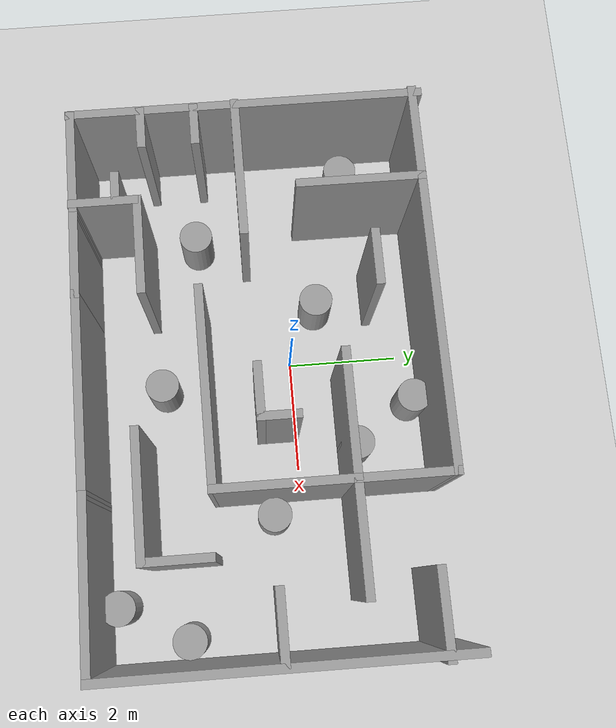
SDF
<sdf version="1.7">
 <world name="default">
  <light name="sun" type="directional">
   <pose>0 0 10 0 -0 0</pose>
   <diffuse>0.8 0.8 0.8 1</diffuse>
   <specular>0.2 0.2 0.2 1</specular>
   <attenuation>
    <range>1000</range>
    <constant>0.9</constant>
    <linear>0.01</linear>
    <quadratic>0.001</quadratic>
   </attenuation>
   <direction>-0.5 0.1 -0.9</direction>
   <spot><inner_angle>0</inner_angle><outer_angle>0</outer_angle><falloff>0</falloff></spot>
  </light>
  <model name="ground_plane">
   <static>1</static>
   <link name="link">
    <collision name="collision">
     <geometry><plane><normal>0 0 1</normal><size>100 100</size></plane></geometry>
     <surface><friction><ode><mu>100</mu><mu2>50</mu2></ode></friction></surface>
    </collision>
    <visual name="visual">
     <cast_shadows>0</cast_shadows>
     <geometry><plane><normal>0 0 1</normal><size>100 100</size></plane></geometry>
     <material>
      <script><uri>file://media/materials/scripts/gazebo.material</uri><name>Gazebo/Grey</name></script>
     </material>
    </visual>
   </link>
  </model>
  <gravity>0 0 -9.8</gravity>
  <magnetic_field>6e-06 2.3e-05 -4.2e-05</magnetic_field>
  <atmosphere type="adiabatic"/>
  <physics type="ode">
   <max_step_size>0.001</max_step_size>
   <real_time_factor>1</real_time_factor>
   <real_time_update_rate>1000</real_time_update_rate>
  </physics>
  <scene><ambient>0.4 0.4 0.4 1</ambient><background>0.7 0.7 0.7 1</background><shadows>1</shadows></scene>
  <audio><device>default</device></audio>
  <spherical_coordinates>
   <surface_model>EARTH_WGS84</surface_model>
   <latitude_deg>0</latitude_deg>
   <longitude_deg>0</longitude_deg>
   <elevation>0</elevation>
   <heading_deg>0</heading_deg>
  </spherical_coordinates>
  <model name="my_maze_!">
   <pose>0.582608 -0.546325 0 0 -0 0</pose>
   <link name="Wall_0">
    <collision name="Wall_0_Collision">
     <geometry><box><size>1.75 0.15 2.5</size></box></geometry>
     <pose>0 0 1.25 0 -0 0</pose>
    </collision>
    <visual name="Wall_0_Visual">
     <pose>0 0 1.25 0 -0 0</pose>
     <geometry><box><size>1.75 0.15 2.5</size></box></geometry>
     <material>
      <script><uri>file://media/materials/scripts/gazebo.material</uri><name>Gazebo/Grey</name></script>
      <ambient>1 1 1 1</ambient>
     </material>
     <meta><layer>0</layer></meta>
    </visual>
    <pose>-2.29625 -1.92639 0 0 -0 3.14159</pose>
   </link>
   <link name="Wall_10">
    <collision name="Wall_10_Collision">
     <geometry><box><size>5.24139 0.15 2.5</size></box></geometry>
     <pose>0 0 1.25 0 -0 0</pose>
    </collision>
    <visual name="Wall_10_Visual">
     <pose>0 0 1.25 0 -0 0</pose>
     <geometry><box><size>5.24139 0.15 2.5</size></box></geometry>
     <material>
      <script><uri>file://media/materials/scripts/gazebo.material</uri><name>Gazebo/Grey</name></script>
      <ambient>1 1 1 1</ambient>
     </material>
     <meta><layer>0</layer></meta>
    </visual>
    <pose>-0.63194 2.96931 0 0 -0 -3.1399</pose>
   </link>
   <link name="Wall_11">
    <collision name="Wall_11_Collision">
     <geometry><box><size>2.2414 0.15 2.5</size></box></geometry>
     <pose>0 0 1.25 0 -0 0</pose>
    </collision>
    <visual name="Wall_11_Visual">
     <pose>0 0 1.25 0 -0 0</pose>
     <geometry><box><size>2.2414 0.15 2.5</size></box></geometry>
     <material>
      <script><uri>file://media/materials/scripts/gazebo.material</uri><name>Gazebo/Grey</name></script>
      <ambient>1 1 1 1</ambient>
     </material>
     <meta><layer>0</layer></meta>
    </visual>
    <pose>-3.18194 1.91931 0 0 -0 -1.57492</pose>
   </link>
   <link name="Wall_13">
    <collision name="Wall_13_Collision">
     <geometry><box><size>1 0.15 2.5</size></box></geometry>
     <pose>0 0 1.25 0 -0 0</pose>
    </collision>
    <visual name="Wall_13_Visual">
     <pose>0 0 1.25 0 -0 0</pose>
     <geometry><box><size>1 0.15 2.5</size></box></geometry>
     <material>
      <script><uri>file://media/materials/scripts/gazebo.material</uri><name>Gazebo/Grey</name></script>
      <ambient>1 1 1 1</ambient>
     </material>
     <meta><layer>0</layer></meta>
    </visual>
    <pose>-1.77822 2.06742 0 0 -0 0</pose>
   </link>
   <link name="Wall_18">
    <collision name="Wall_18_Collision">
     <geometry><box><size>6.23139 0.15 2.5</size></box></geometry>
     <pose>0 0 1.25 0 -0 0</pose>
    </collision>
    <visual name="Wall_18_Visual">
     <pose>0 0 1.25 0 -0 0</pose>
     <geometry><box><size>6.23139 0.15 2.5</size></box></geometry>
     <material>
      <script><uri>file://media/materials/scripts/gazebo.material</uri><name>Gazebo/Grey</name></script>
      <ambient>1 1 1 1</ambient>
     </material>
     <meta><layer>0</layer></meta>
    </visual>
    <pose>-4.74194 0.014305 0 0 -0 -1.57221</pose>
   </link>
   <link name="Wall_2">
    <collision name="Wall_2_Collision">
     <geometry><box><size>1.53004 0.15 2.5</size></box></geometry>
     <pose>0 0 1.25 0 -0 0</pose>
    </collision>
    <visual name="Wall_2_Visual">
     <pose>0 0 1.25 0 -0 0</pose>
     <geometry><box><size>1.53004 0.15 2.5</size></box></geometry>
     <material>
      <script><uri>file://media/materials/scripts/gazebo.material</uri><name>Gazebo/Grey</name></script>
      <ambient>1 1 1 1</ambient>
     </material>
     <meta><layer>0</layer></meta>
    </visual>
    <pose>-2.18625 -3.02139 0 0 -0 -0.007246</pose>
   </link>
   <link name="Wall_20">
    <collision name="Wall_20_Collision">
     <geometry><box><size>2 0.15 2.5</size></box></geometry>
     <pose>0 0 1.25 0 -0 0</pose>
    </collision>
    <visual name="Wall_20_Visual">
     <pose>0 0 1.25 0 -0 0</pose>
     <geometry><box><size>2 0.15 2.5</size></box></geometry>
     <material>
      <script><uri>file://media/materials/scripts/gazebo.material</uri><name>Gazebo/Grey</name></script>
      <ambient>1 1 1 1</ambient>
     </material>
     <meta><layer>0</layer></meta>
    </visual>
    <pose>-3.81125 -3.01639 0 0 -0 3.14159</pose>
   </link>
   <link name="Wall_22">
    <collision name="Wall_22_Collision">
     <geometry><box><size>1.25 0.15 2.5</size></box></geometry>
     <pose>0 0 1.25 0 -0 0</pose>
    </collision>
    <visual name="Wall_22_Visual">
     <pose>0 0 1.25 0 -0 0</pose>
     <geometry><box><size>1.25 0.15 2.5</size></box></geometry>
     <material>
      <script><uri>file://media/materials/scripts/gazebo.material</uri><name>Gazebo/Grey</name></script>
      <ambient>1 1 1 1</ambient>
     </material>
     <meta><layer>0</layer></meta>
    </visual>
    <pose>-3.09625 -2.47639 0 0 -0 -1.5708</pose>
   </link>
   <link name="Wall_24">
    <collision name="Wall_24_Collision">
     <geometry><box><size>0.75 0.15 2.5</size></box></geometry>
     <pose>0 0 1.25 0 -0 0</pose>
    </collision>
    <visual name="Wall_24_Visual">
     <pose>0 0 1.25 0 -0 0</pose>
     <geometry><box><size>0.75 0.15 2.5</size></box></geometry>
     <material>
      <script><uri>file://media/materials/scripts/gazebo.material</uri><name>Gazebo/Grey</name></script>
      <ambient>1 1 1 1</ambient>
     </material>
     <meta><layer>0</layer></meta>
    </visual>
    <pose>0.802177 0.204395 0 0 -0 -1.5708</pose>
   </link>
   <link name="Wall_25">
    <collision name="Wall_25_Collision">
     <geometry><box><size>1 0.15 2.5</size></box></geometry>
     <pose>0 0 1.25 0 -0 0</pose>
    </collision>
    <visual name="Wall_25_Visual">
     <pose>0 0 1.25 0 -0 0</pose>
     <geometry><box><size>1 0.15 2.5</size></box></geometry>
     <material>
      <script><uri>file://media/materials/scripts/gazebo.material</uri><name>Gazebo/Grey</name></script>
      <ambient>1 1 1 1</ambient>
     </material>
     <meta><layer>0</layer></meta>
    </visual>
    <pose>0.377177 -0.095605 0 0 -0 3.14159</pose>
   </link>
   <link name="Wall_27">
    <collision name="Wall_27_Collision">
     <geometry><box><size>3.5 0.15 2.5</size></box></geometry>
     <pose>0 0 1.25 0 -0 0</pose>
    </collision>
    <visual name="Wall_27_Visual">
     <pose>0 0 1.25 0 -0 0</pose>
     <geometry><box><size>3.5 0.15 2.5</size></box></geometry>
     <material>
      <script><uri>file://media/materials/scripts/gazebo.material</uri><name>Gazebo/Grey</name></script>
      <ambient>1 1 1 1</ambient>
     </material>
     <meta><layer>0</layer></meta>
    </visual>
    <pose>0.178753 -3.02639 0 0 -0 0</pose>
   </link>
   <link name="Wall_31">
    <collision name="Wall_31_Collision">
     <geometry><box><size>2.5 0.15 2.5</size></box></geometry>
     <pose>0 0 1.25 0 -0 0</pose>
    </collision>
    <visual name="Wall_31_Visual">
     <pose>0 0 1.25 0 -0 0</pose>
     <geometry><box><size>2.5 0.15 2.5</size></box></geometry>
     <material>
      <script><uri>file://media/materials/scripts/gazebo.material</uri><name>Gazebo/Grey</name></script>
      <ambient>1 1 1 1</ambient>
     </material>
     <meta><layer>0</layer></meta>
    </visual>
    <pose>-3.58742 -0.14596 0 0 -0 0</pose>
   </link>
   <link name="Wall_33">
    <collision name="Wall_33_Collision">
     <geometry><box><size>1.75 0.15 2.5</size></box></geometry>
     <pose>0 0 1.25 0 -0 0</pose>
    </collision>
    <visual name="Wall_33_Visual">
     <pose>0 0 1.25 0 -0 0</pose>
     <geometry><box><size>1.75 0.15 2.5</size></box></geometry>
     <material>
      <script><uri>file://media/materials/scripts/gazebo.material</uri><name>Gazebo/Grey</name></script>
      <ambient>1 1 1 1</ambient>
     </material>
     <meta><layer>0</layer></meta>
    </visual>
    <pose>-3.97763 2.965 0 0 -0 3.14159</pose>
   </link>
   <link name="Wall_35">
    <collision name="Wall_35_Collision">
     <geometry><box><size>6.25 0.15 2.5</size></box></geometry>
     <pose>0 0 1.25 0 -0 0</pose>
    </collision>
    <visual name="Wall_35_Visual">
     <pose>0 0 1.25 0 -0 0</pose>
     <geometry><box><size>6.25 0.15 2.5</size></box></geometry>
     <material>
      <script><uri>file://media/materials/scripts/gazebo.material</uri><name>Gazebo/Grey</name></script>
      <ambient>1 1 1 1</ambient>
     </material>
     <meta><layer>0</layer></meta>
    </visual>
    <pose>4.71729 -0.004375 0 0 -0 -1.5708</pose>
   </link>
   <link name="Wall_36">
    <collision name="Wall_36_Collision">
     <geometry><box><size>3.01368 0.15 2.5</size></box></geometry>
     <pose>0 0 1.25 0 -0 0</pose>
    </collision>
    <visual name="Wall_36_Visual">
     <pose>0 0 1.25 0 -0 0</pose>
     <geometry><box><size>3.01368 0.15 2.5</size></box></geometry>
     <material>
      <script><uri>file://media/materials/scripts/gazebo.material</uri><name>Gazebo/Grey</name></script>
      <ambient>1 1 1 1</ambient>
     </material>
     <meta><layer>0</layer></meta>
    </visual>
    <pose>3.28552 -3.04038 0 0 -0 3.13182</pose>
   </link>
   <link name="Wall_38">
    <collision name="Wall_38_Collision">
     <geometry><box><size>2.25 0.15 2.5</size></box></geometry>
     <pose>0 0 1.25 0 -0 0</pose>
    </collision>
    <visual name="Wall_38_Visual">
     <pose>0 0 1.25 0 -0 0</pose>
     <geometry><box><size>2.25 0.15 2.5</size></box></geometry>
     <material>
      <script><uri>file://media/materials/scripts/gazebo.material</uri><name>Gazebo/Grey</name></script>
      <ambient>1 1 1 1</ambient>
     </material>
     <meta><layer>0</layer></meta>
    </visual>
    <pose>1.9256 -2.14368 0 0 -0 0</pose>
   </link>
   <link name="Wall_39">
    <collision name="Wall_39_Collision">
     <geometry><box><size>1.25 0.15 2.5</size></box></geometry>
     <pose>0 0 1.25 0 -0 0</pose>
    </collision>
    <visual name="Wall_39_Visual">
     <pose>0 0 1.25 0 -0 0</pose>
     <geometry><box><size>1.25 0.15 2.5</size></box></geometry>
     <material>
      <script><uri>file://media/materials/scripts/gazebo.material</uri><name>Gazebo/Grey</name></script>
      <ambient>1 1 1 1</ambient>
     </material>
     <meta><layer>0</layer></meta>
    </visual>
    <pose>2.9756 -1.59368 0 0 -0 1.5708</pose>
   </link>
   <link name="Wall_4">
    <collision name="Wall_4_Collision">
     <geometry><box><size>3.50005 0.15 2.5</size></box></geometry>
     <pose>0 0 1.25 0 -0 0</pose>
    </collision>
    <visual name="Wall_4_Visual">
     <pose>0 0 1.25 0 -0 0</pose>
     <geometry><box><size>3.50005 0.15 2.5</size></box></geometry>
     <material>
      <script><uri>file://media/materials/scripts/gazebo.material</uri><name>Gazebo/Grey</name></script>
      <ambient>1 1 1 1</ambient>
     </material>
     <meta><layer>0</layer></meta>
    </visual>
    <pose>0.238753 -0.967692 0 0 -0 0.005191</pose>
   </link>
   <link name="Wall_42">
    <collision name="Wall_42_Collision">
     <geometry><box><size>1.25 0.15 2.5</size></box></geometry>
     <pose>0 0 1.25 0 -0 0</pose>
    </collision>
    <visual name="Wall_42_Visual">
     <pose>0 0 1.25 0 -0 0</pose>
     <geometry><box><size>1.25 0.15 2.5</size></box></geometry>
     <material>
      <script><uri>file://media/materials/scripts/gazebo.material</uri><name>Gazebo/Grey</name></script>
      <ambient>1 1 1 1</ambient>
     </material>
     <meta><layer>0</layer></meta>
    </visual>
    <pose>4.10695 -0.011638 0 0 -0 3.14159</pose>
   </link>
   <link name="Wall_44">
    <collision name="Wall_44_Collision">
     <geometry><box><size>2 0.15 2.5</size></box></geometry>
     <pose>0 0 1.25 0 -0 0</pose>
    </collision>
    <visual name="Wall_44_Visual">
     <pose>0 0 1.25 0 -0 0</pose>
     <geometry><box><size>2 0.15 2.5</size></box></geometry>
     <material>
      <script><uri>file://media/materials/scripts/gazebo.material</uri><name>Gazebo/Grey</name></script>
      <ambient>1 1 1 1</ambient>
     </material>
     <meta><layer>0</layer></meta>
    </visual>
    <pose>2.83875 1.37361 0 0 -0 0</pose>
   </link>
   <link name="Wall_46">
    <collision name="Wall_46_Collision">
     <geometry><box><size>1.5 0.15 2.5</size></box></geometry>
     <pose>0 0 1.25 0 -0 0</pose>
    </collision>
    <visual name="Wall_46_Visual">
     <pose>0 0 1.25 0 -0 0</pose>
     <geometry><box><size>1.5 0.15 2.5</size></box></geometry>
     <material>
      <script><uri>file://media/materials/scripts/gazebo.material</uri><name>Gazebo/Grey</name></script>
      <ambient>1 1 1 1</ambient>
     </material>
     <meta><layer>0</layer></meta>
    </visual>
    <pose>4.10263 2.52267 0 0 -0 3.14159</pose>
   </link>
   <link name="Wall_48">
    <collision name="Wall_48_Collision">
     <geometry><box><size>0.75 0.15 2.5</size></box></geometry>
     <pose>0 0 1.25 0 -0 0</pose>
    </collision>
    <visual name="Wall_48_Visual">
     <pose>0 0 1.25 0 -0 0</pose>
     <geometry><box><size>0.75 0.15 2.5</size></box></geometry>
     <material>
      <script><uri>file://media/materials/scripts/gazebo.material</uri><name>Gazebo/Grey</name></script>
      <ambient>1 1 1 1</ambient>
     </material>
     <meta><layer>0</layer></meta>
    </visual>
    <pose>-4.42685 -0.86849 0 0 -0 0</pose>
   </link>
   <link name="Wall_50">
    <collision name="Wall_50_Collision">
     <geometry><box><size>0.5 0.15 2.5</size></box></geometry>
     <pose>0 0 1.25 0 -0 0</pose>
    </collision>
    <visual name="Wall_50_Visual">
     <pose>0 0 1.25 0 -0 0</pose>
     <geometry><box><size>0.5 0.15 2.5</size></box></geometry>
     <material>
      <script><uri>file://media/materials/scripts/gazebo.material</uri><name>Gazebo/Grey</name></script>
      <ambient>1 1 1 1</ambient>
     </material>
     <meta><layer>0</layer></meta>
    </visual>
    <pose>-3.38185 -2.28849 0 0 -0 3.14159</pose>
   </link>
   <link name="Wall_52">
    <collision name="Wall_52_Collision">
     <geometry><box><size>0.75 0.15 2.5</size></box></geometry>
     <pose>0 0 1.25 0 -0 0</pose>
    </collision>
    <visual name="Wall_52_Visual">
     <pose>0 0 1.25 0 -0 0</pose>
     <geometry><box><size>0.75 0.15 2.5</size></box></geometry>
     <material>
      <script><uri>file://media/materials/scripts/gazebo.material</uri><name>Gazebo/Grey</name></script>
      <ambient>1 1 1 1</ambient>
     </material>
     <meta><layer>0</layer></meta>
    </visual>
    <pose>-4.42685 -1.79849 0 0 -0 0</pose>
   </link>
   <link name="Wall_6">
    <collision name="Wall_6_Collision">
     <geometry><box><size>2.48261 0.15 2.5</size></box></geometry>
     <pose>0 0 1.25 0 -0 0</pose>
    </collision>
    <visual name="Wall_6_Visual">
     <pose>0 0 1.25 0 -0 0</pose>
     <geometry><box><size>2.48261 0.15 2.5</size></box></geometry>
     <material>
      <script><uri>file://media/materials/scripts/gazebo.material</uri><name>Gazebo/Grey</name></script>
      <ambient>1 1 1 1</ambient>
     </material>
     <meta><layer>0</layer></meta>
    </visual>
    <pose>1.91375 0.207308 0 0 -0 1.5708</pose>
   </link>
   <link name="Wall_7">
    <collision name="Wall_7_Collision">
     <geometry><box><size>2.25 0.15 2.5</size></box></geometry>
     <pose>0 0 1.25 0 -0 0</pose>
    </collision>
    <visual name="Wall_7_Visual">
     <pose>0 0 1.25 0 -0 0</pose>
     <geometry><box><size>2.25 0.15 2.5</size></box></geometry>
     <material>
      <script><uri>file://media/materials/scripts/gazebo.material</uri><name>Gazebo/Grey</name></script>
      <ambient>1 1 1 1</ambient>
     </material>
     <meta><layer>0</layer></meta>
    </visual>
    <pose>0.863753 1.37361 0 0 -0 3.14159</pose>
   </link>
   <link name="Wall_9">
    <collision name="Wall_9_Collision">
     <geometry><box><size>1.75 0.15 2.5</size></box></geometry>
     <pose>0 0 1.25 0 -0 0</pose>
    </collision>
    <visual name="Wall_9_Visual">
     <pose>0 0 1.25 0 -0 0</pose>
     <geometry><box><size>1.75 0.15 2.5</size></box></geometry>
     <material>
      <script><uri>file://media/materials/scripts/gazebo.material</uri><name>Gazebo/Grey</name></script>
      <ambient>1 1 1 1</ambient>
     </material>
     <meta><layer>0</layer></meta>
    </visual>
    <pose>1.91375 2.17361 0 0 -0 1.5708</pose>
   </link>
   <static>1</static>
  </model>
  <model name="unit_cylinder">
   <link name="link">
    <inertial>
     <mass>1</mass>
     <inertia><ixx>0.145833</ixx><ixy>0</ixy><ixz>0</ixz><iyy>0.145833</iyy><iyz>0</iyz><izz>0.125</izz></inertia>
    </inertial>
    <visual name="visual">
     <geometry><cylinder><radius>0.3</radius><length>1</length></cylinder></geometry>
     <material>
      <script><name>Gazebo/Grey</name><uri>file://media/materials/scripts/gazebo.material</uri></script>
      <shader type="normal_map_tangent_space"><normal_map>__default__</normal_map></shader>
      <ambient>1 1 1 1</ambient>
      <diffuse>1 1 1 1</diffuse>
      <specular>0.01 0.01 0.01 1</specular>
      <emissive>0 0 0 1</emissive>
     </material>
    </visual>
    <collision name="collision">
     <geometry><cylinder><radius>0.3</radius><length>1</length></cylinder></geometry>
     <surface>
      <friction>
       <ode><mu>1</mu><mu2>1</mu2><fdir1>0 0 0</fdir1><slip1>0</slip1><slip2>0</slip2></ode>
       <torsional>
        <coefficient>1</coefficient>
        <patch_radius>0</patch_radius>
        <surface_radius>0</surface_radius>
        <use_patch_radius>1</use_patch_radius>
        <ode><slip>0</slip></ode>
       </torsional>
      </friction>
      <bounce><restitution_coefficient>0</restitution_coefficient><threshold>1e+06</threshold></bounce>
      <contact>
       <collide_without_contact>0</collide_without_contact>
       <collide_without_contact_bitmask>1</collide_without_contact_bitmask>
       <collide_bitmask>1</collide_bitmask>
       <ode>
        <soft_cfm>0</soft_cfm>
        <soft_erp>0.2</soft_erp>
        <kp>1e+13</kp>
        <kd>1</kd>
        <max_vel>0.01</max_vel>
        <min_depth>0</min_depth>
       </ode>
       <bullet>
        <split_impulse>1</split_impulse>
        <split_impulse_penetration_threshold>-0.01</split_impulse_penetration_threshold>
        <soft_cfm>0</soft_cfm>
        <soft_erp>0.2</soft_erp>
        <kp>1e+13</kp>
        <kd>1</kd>
       </bullet>
      </contact>
     </surface>
    </collision>
   </link>
   <static>0</static>
   <pose>-0.973244 0.536486 0.5 0 -0 0</pose>
  </model>
  <model name="unit_cylinder_clone">
   <link name="link">
    <inertial>
     <mass>1</mass>
     <inertia><ixx>0.145833</ixx><ixy>0</ixy><ixz>0</ixz><iyy>0.145833</iyy><iyz>0</iyz><izz>0.125</izz></inertia>
    </inertial>
    <visual name="visual">
     <geometry><cylinder><radius>0.3</radius><length>1</length></cylinder></geometry>
     <material>
      <script><name>Gazebo/Grey</name><uri>file://media/materials/scripts/gazebo.material</uri></script>
      <shader type="normal_map_tangent_space"><normal_map>__default__</normal_map></shader>
      <ambient>1 1 1 1</ambient>
      <diffuse>1 1 1 1</diffuse>
      <specular>0.01 0.01 0.01 1</specular>
      <emissive>0 0 0 1</emissive>
     </material>
    </visual>
    <collision name="collision">
     <geometry><cylinder><radius>0.3</radius><length>1</length></cylinder></geometry>
     <surface>
      <friction>
       <ode><mu>1</mu><mu2>1</mu2><fdir1>0 0 0</fdir1><slip1>0</slip1><slip2>0</slip2></ode>
       <torsional>
        <coefficient>1</coefficient>
        <patch_radius>0</patch_radius>
        <surface_radius>0</surface_radius>
        <use_patch_radius>1</use_patch_radius>
        <ode><slip>0</slip></ode>
       </torsional>
      </friction>
      <bounce><restitution_coefficient>0</restitution_coefficient><threshold>1e+06</threshold></bounce>
      <contact>
       <collide_without_contact>0</collide_without_contact>
       <collide_without_contact_bitmask>1</collide_without_contact_bitmask>
       <collide_bitmask>1</collide_bitmask>
       <ode>
        <soft_cfm>0</soft_cfm>
        <soft_erp>0.2</soft_erp>
        <kp>1e+13</kp>
        <kd>1</kd>
        <max_vel>0.01</max_vel>
        <min_depth>0</min_depth>
       </ode>
       <bullet>
        <split_impulse>1</split_impulse>
        <split_impulse_penetration_threshold>-0.01</split_impulse_penetration_threshold>
        <soft_cfm>0</soft_cfm>
        <soft_erp>0.2</soft_erp>
        <kp>1e+13</kp>
        <kd>1</kd>
       </bullet>
      </contact>
     </surface>
    </collision>
   </link>
   <static>0</static>
   <pose>0.423795 -2.34844 0.5 0 -0 0</pose>
  </model>
  <model name="unit_cylinder_clone_0">
   <link name="link">
    <inertial>
     <mass>1</mass>
     <inertia><ixx>0.145833</ixx><ixy>0</ixy><ixz>0</ixz><iyy>0.145833</iyy><iyz>0</iyz><izz>0.125</izz></inertia>
    </inertial>
    <visual name="visual">
     <geometry><cylinder><radius>0.3</radius><length>1</length></cylinder></geometry>
     <material>
      <script><name>Gazebo/Grey</name><uri>file://media/materials/scripts/gazebo.material</uri></script>
      <shader type="normal_map_tangent_space"><normal_map>__default__</normal_map></shader>
      <ambient>1 1 1 1</ambient>
      <diffuse>1 1 1 1</diffuse>
      <specular>0.01 0.01 0.01 1</specular>
      <emissive>0 0 0 1</emissive>
     </material>
    </visual>
    <collision name="collision">
     <geometry><cylinder><radius>0.3</radius><length>1</length></cylinder></geometry>
     <surface>
      <friction>
       <ode><mu>1</mu><mu2>1</mu2><fdir1>0 0 0</fdir1><slip1>0</slip1><slip2>0</slip2></ode>
       <torsional>
        <coefficient>1</coefficient>
        <patch_radius>0</patch_radius>
        <surface_radius>0</surface_radius>
        <use_patch_radius>1</use_patch_radius>
        <ode><slip>0</slip></ode>
       </torsional>
      </friction>
      <bounce><restitution_coefficient>0</restitution_coefficient><threshold>1e+06</threshold></bounce>
      <contact>
       <collide_without_contact>0</collide_without_contact>
       <collide_without_contact_bitmask>1</collide_without_contact_bitmask>
       <collide_bitmask>1</collide_bitmask>
       <ode>
        <soft_cfm>0</soft_cfm>
        <soft_erp>0.2</soft_erp>
        <kp>1e+13</kp>
        <kd>1</kd>
        <max_vel>0.01</max_vel>
        <min_depth>0</min_depth>
       </ode>
       <bullet>
        <split_impulse>1</split_impulse>
        <split_impulse_penetration_threshold>-0.01</split_impulse_penetration_threshold>
        <soft_cfm>0</soft_cfm>
        <soft_erp>0.2</soft_erp>
        <kp>1e+13</kp>
        <kd>1</kd>
       </bullet>
      </contact>
     </surface>
    </collision>
   </link>
   <static>0</static>
   <pose>-2.35767 -1.58102 0.5 0 -0 0</pose>
  </model>
  <model name="unit_cylinder_clone_1">
   <link name="link">
    <inertial>
     <mass>1</mass>
     <inertia><ixx>0.145833</ixx><ixy>0</ixy><ixz>0</ixz><iyy>0.145833</iyy><iyz>0</iyz><izz>0.125</izz></inertia>
    </inertial>
    <visual name="visual">
     <geometry><cylinder><radius>0.3</radius><length>1</length></cylinder></geometry>
     <material>
      <script><name>Gazebo/Grey</name><uri>file://media/materials/scripts/gazebo.material</uri></script>
      <shader type="normal_map_tangent_space"><normal_map>__default__</normal_map></shader>
      <ambient>1 1 1 1</ambient>
      <diffuse>1 1 1 1</diffuse>
      <specular>0.01 0.01 0.01 1</specular>
      <emissive>0 0 0 1</emissive>
     </material>
    </visual>
    <collision name="collision">
     <geometry><cylinder><radius>0.3</radius><length>1</length></cylinder></geometry>
     <surface>
      <friction>
       <ode><mu>1</mu><mu2>1</mu2><fdir1>0 0 0</fdir1><slip1>0</slip1><slip2>0</slip2></ode>
       <torsional>
        <coefficient>1</coefficient>
        <patch_radius>0</patch_radius>
        <surface_radius>0</surface_radius>
        <use_patch_radius>1</use_patch_radius>
        <ode><slip>0</slip></ode>
       </torsional>
      </friction>
      <bounce><restitution_coefficient>0</restitution_coefficient><threshold>1e+06</threshold></bounce>
      <contact>
       <collide_without_contact>0</collide_without_contact>
       <collide_without_contact_bitmask>1</collide_without_contact_bitmask>
       <collide_bitmask>1</collide_bitmask>
       <ode>
        <soft_cfm>0</soft_cfm>
        <soft_erp>0.2</soft_erp>
        <kp>1e+13</kp>
        <kd>1</kd>
        <max_vel>0.01</max_vel>
        <min_depth>0</min_depth>
       </ode>
       <bullet>
        <split_impulse>1</split_impulse>
        <split_impulse_penetration_threshold>-0.01</split_impulse_penetration_threshold>
        <soft_cfm>0</soft_cfm>
        <soft_erp>0.2</soft_erp>
        <kp>1e+13</kp>
        <kd>1</kd>
       </bullet>
      </contact>
     </surface>
    </collision>
   </link>
   <static>0</static>
   <pose>4.87638 -2.1078 0.5 0 -0 0</pose>
  </model>
  <model name="unit_cylinder_clone_clone">
   <link name="link">
    <inertial>
     <mass>1</mass>
     <inertia><ixx>0.145833</ixx><ixy>0</ixy><ixz>0</ixz><iyy>0.145833</iyy><iyz>0</iyz><izz>0.125</izz></inertia>
    </inertial>
    <visual name="visual">
     <geometry><cylinder><radius>0.3</radius><length>1</length></cylinder></geometry>
     <material>
      <script><name>Gazebo/Grey</name><uri>file://media/materials/scripts/gazebo.material</uri></script>
      <shader type="normal_map_tangent_space"><normal_map>__default__</normal_map></shader>
      <ambient>1 1 1 1</ambient>
      <diffuse>1 1 1 1</diffuse>
      <specular>0.01 0.01 0.01 1</specular>
      <emissive>0 0 0 1</emissive>
     </material>
    </visual>
    <collision name="collision">
     <geometry><cylinder><radius>0.3</radius><length>1</length></cylinder></geometry>
     <surface>
      <friction>
       <ode><mu>1</mu><mu2>1</mu2><fdir1>0 0 0</fdir1><slip1>0</slip1><slip2>0</slip2></ode>
       <torsional>
        <coefficient>1</coefficient>
        <patch_radius>0</patch_radius>
        <surface_radius>0</surface_radius>
        <use_patch_radius>1</use_patch_radius>
        <ode><slip>0</slip></ode>
       </torsional>
      </friction>
      <bounce><restitution_coefficient>0</restitution_coefficient><threshold>1e+06</threshold></bounce>
      <contact>
       <collide_without_contact>0</collide_without_contact>
       <collide_without_contact_bitmask>1</collide_without_contact_bitmask>
       <collide_bitmask>1</collide_bitmask>
       <ode>
        <soft_cfm>0</soft_cfm>
        <soft_erp>0.2</soft_erp>
        <kp>1e+13</kp>
        <kd>1</kd>
        <max_vel>0.01</max_vel>
        <min_depth>0</min_depth>
       </ode>
       <bullet>
        <split_impulse>1</split_impulse>
        <split_impulse_penetration_threshold>-0.01</split_impulse_penetration_threshold>
        <soft_cfm>0</soft_cfm>
        <soft_erp>0.2</soft_erp>
        <kp>1e+13</kp>
        <kd>1</kd>
       </bullet>
      </contact>
     </surface>
    </collision>
   </link>
   <static>0</static>
   <pose>2.86353 -0.513768 0.5 0 -0 0</pose>
  </model>
  <model name="unit_cylinder_clone_2">
   <link name="link">
    <inertial>
     <mass>1</mass>
     <inertia><ixx>0.145833</ixx><ixy>0</ixy><ixz>0</ixz><iyy>0.145833</iyy><iyz>0</iyz><izz>0.125</izz></inertia>
    </inertial>
    <visual name="visual">
     <geometry><cylinder><radius>0.3</radius><length>1</length></cylinder></geometry>
     <material>
      <script><name>Gazebo/Grey</name><uri>file://media/materials/scripts/gazebo.material</uri></script>
      <shader type="normal_map_tangent_space"><normal_map>__default__</normal_map></shader>
      <ambient>1 1 1 1</ambient>
      <diffuse>1 1 1 1</diffuse>
      <specular>0.01 0.01 0.01 1</specular>
      <emissive>0 0 0 1</emissive>
     </material>
    </visual>
    <collision name="collision">
     <geometry><cylinder><radius>0.3</radius><length>1</length></cylinder></geometry>
     <surface>
      <friction>
       <ode><mu>1</mu><mu2>1</mu2><fdir1>0 0 0</fdir1><slip1>0</slip1><slip2>0</slip2></ode>
       <torsional>
        <coefficient>1</coefficient>
        <patch_radius>0</patch_radius>
        <surface_radius>0</surface_radius>
        <use_patch_radius>1</use_patch_radius>
        <ode><slip>0</slip></ode>
       </torsional>
      </friction>
      <bounce><restitution_coefficient>0</restitution_coefficient><threshold>1e+06</threshold></bounce>
      <contact>
       <collide_without_contact>0</collide_without_contact>
       <collide_without_contact_bitmask>1</collide_without_contact_bitmask>
       <collide_bitmask>1</collide_bitmask>
       <ode>
        <soft_cfm>0</soft_cfm>
        <soft_erp>0.2</soft_erp>
        <kp>1e+13</kp>
        <kd>1</kd>
        <max_vel>0.01</max_vel>
        <min_depth>0</min_depth>
       </ode>
       <bullet>
        <split_impulse>1</split_impulse>
        <split_impulse_penetration_threshold>-0.01</split_impulse_penetration_threshold>
        <soft_cfm>0</soft_cfm>
        <soft_erp>0.2</soft_erp>
        <kp>1e+13</kp>
        <kd>1</kd>
       </bullet>
      </contact>
     </surface>
    </collision>
   </link>
   <static>0</static>
   <pose>4.24514 -3.2957 0.5 0 -0 0</pose>
  </model>
  <model name="unit_cylinder_clone_5">
   <link name="link">
    <inertial>
     <mass>1</mass>
     <inertia><ixx>0.145833</ixx><ixy>0</ixy><ixz>0</ixz><iyy>0.145833</iyy><iyz>0</iyz><izz>0.125</izz></inertia>
    </inertial>
    <visual name="visual">
     <geometry><cylinder><radius>0.3</radius><length>1</length></cylinder></geometry>
     <material>
      <script><name>Gazebo/Grey</name><uri>file://media/materials/scripts/gazebo.material</uri></script>
      <shader type="normal_map_tangent_space"><normal_map>__default__</normal_map></shader>
      <ambient>1 1 1 1</ambient>
      <diffuse>1 1 1 1</diffuse>
      <specular>0.01 0.01 0.01 1</specular>
      <emissive>0 0 0 1</emissive>
     </material>
    </visual>
    <collision name="collision">
     <geometry><cylinder><radius>0.3</radius><length>1</length></cylinder></geometry>
     <surface>
      <friction>
       <ode><mu>1</mu><mu2>1</mu2><fdir1>0 0 0</fdir1><slip1>0</slip1><slip2>0</slip2></ode>
       <torsional>
        <coefficient>1</coefficient>
        <patch_radius>0</patch_radius>
        <surface_radius>0</surface_radius>
        <use_patch_radius>1</use_patch_radius>
        <ode><slip>0</slip></ode>
       </torsional>
      </friction>
      <bounce><restitution_coefficient>0</restitution_coefficient><threshold>1e+06</threshold></bounce>
      <contact>
       <collide_without_contact>0</collide_without_contact>
       <collide_without_contact_bitmask>1</collide_without_contact_bitmask>
       <collide_bitmask>1</collide_bitmask>
       <ode>
        <soft_cfm>0</soft_cfm>
        <soft_erp>0.2</soft_erp>
        <kp>1e+13</kp>
        <kd>1</kd>
        <max_vel>0.01</max_vel>
        <min_depth>0</min_depth>
       </ode>
       <bullet>
        <split_impulse>1</split_impulse>
        <split_impulse_penetration_threshold>-0.01</split_impulse_penetration_threshold>
        <soft_cfm>0</soft_cfm>
        <soft_erp>0.2</soft_erp>
        <kp>1e+13</kp>
        <kd>1</kd>
       </bullet>
      </contact>
     </surface>
    </collision>
   </link>
   <static>0</static>
   <pose>0.931144 2.13338 0.5 0 -0 0</pose>
  </model>
  <model name="unit_cylinder_clone_6">
   <link name="link">
    <inertial>
     <mass>1</mass>
     <inertia><ixx>0.145833</ixx><ixy>0</ixy><ixz>0</ixz><iyy>0.145833</iyy><iyz>0</iyz><izz>0.125</izz></inertia>
    </inertial>
    <visual name="visual">
     <geometry><cylinder><radius>0.3</radius><length>1</length></cylinder></geometry>
     <material>
      <script><name>Gazebo/Grey</name><uri>file://media/materials/scripts/gazebo.material</uri></script>
      <shader type="normal_map_tangent_space"><normal_map>__default__</normal_map></shader>
      <ambient>1 1 1 1</ambient>
      <diffuse>1 1 1 1</diffuse>
      <specular>0.01 0.01 0.01 1</specular>
      <emissive>0 0 0 1</emissive>
     </material>
    </visual>
    <collision name="collision">
     <geometry><cylinder><radius>0.3</radius><length>1</length></cylinder></geometry>
     <surface>
      <friction>
       <ode><mu>1</mu><mu2>1</mu2><fdir1>0 0 0</fdir1><slip1>0</slip1><slip2>0</slip2></ode>
       <torsional>
        <coefficient>1</coefficient>
        <patch_radius>0</patch_radius>
        <surface_radius>0</surface_radius>
        <use_patch_radius>1</use_patch_radius>
        <ode><slip>0</slip></ode>
       </torsional>
      </friction>
      <bounce><restitution_coefficient>0</restitution_coefficient><threshold>1e+06</threshold></bounce>
      <contact>
       <collide_without_contact>0</collide_without_contact>
       <collide_without_contact_bitmask>1</collide_without_contact_bitmask>
       <collide_bitmask>1</collide_bitmask>
       <ode>
        <soft_cfm>0</soft_cfm>
        <soft_erp>0.2</soft_erp>
        <kp>1e+13</kp>
        <kd>1</kd>
        <max_vel>0.01</max_vel>
        <min_depth>0</min_depth>
       </ode>
       <bullet>
        <split_impulse>1</split_impulse>
        <split_impulse_penetration_threshold>-0.01</split_impulse_penetration_threshold>
        <soft_cfm>0</soft_cfm>
        <soft_erp>0.2</soft_erp>
        <kp>1e+13</kp>
        <kd>1</kd>
       </bullet>
      </contact>
     </surface>
    </collision>
   </link>
   <static>0</static>
   <pose>1.70074 1.04831 0.5 0 -0 0</pose>
  </model>
  <model name="unit_cylinder_clone_3">
   <link name="link">
    <inertial>
     <mass>1</mass>
     <inertia><ixx>0.145833</ixx><ixy>0</ixy><ixz>0</ixz><iyy>0.145833</iyy><iyz>0</iyz><izz>0.125</izz></inertia>
    </inertial>
    <visual name="visual">
     <geometry><cylinder><radius>0.3</radius><length>1</length></cylinder></geometry>
     <material>
      <script><name>Gazebo/Grey</name><uri>file://media/materials/scripts/gazebo.material</uri></script>
      <shader type="normal_map_tangent_space"><normal_map>__default__</normal_map></shader>
      <ambient>1 1 1 1</ambient>
      <diffuse>1 1 1 1</diffuse>
      <specular>0.01 0.01 0.01 1</specular>
      <emissive>0 0 0 1</emissive>
     </material>
    </visual>
    <collision name="collision">
     <geometry><cylinder><radius>0.3</radius><length>1</length></cylinder></geometry>
     <surface>
      <friction>
       <ode><mu>1</mu><mu2>1</mu2><fdir1>0 0 0</fdir1><slip1>0</slip1><slip2>0</slip2></ode>
       <torsional>
        <coefficient>1</coefficient>
        <patch_radius>0</patch_radius>
        <surface_radius>0</surface_radius>
        <use_patch_radius>1</use_patch_radius>
        <ode><slip>0</slip></ode>
       </torsional>
      </friction>
      <bounce><restitution_coefficient>0</restitution_coefficient><threshold>1e+06</threshold></bounce>
      <contact>
       <collide_without_contact>0</collide_without_contact>
       <collide_without_contact_bitmask>1</collide_without_contact_bitmask>
       <collide_bitmask>1</collide_bitmask>
       <ode>
        <soft_cfm>0</soft_cfm>
        <soft_erp>0.2</soft_erp>
        <kp>1e+13</kp>
        <kd>1</kd>
        <max_vel>0.01</max_vel>
        <min_depth>0</min_depth>
       </ode>
       <bullet>
        <split_impulse>1</split_impulse>
        <split_impulse_penetration_threshold>-0.01</split_impulse_penetration_threshold>
        <soft_cfm>0</soft_cfm>
        <soft_erp>0.2</soft_erp>
        <kp>1e+13</kp>
        <kd>1</kd>
       </bullet>
      </contact>
     </surface>
    </collision>
   </link>
   <static>0</static>
   <pose>-3.48168 1.20152 0.5 0 -0 0</pose>
  </model>
 </world>
</sdf>
